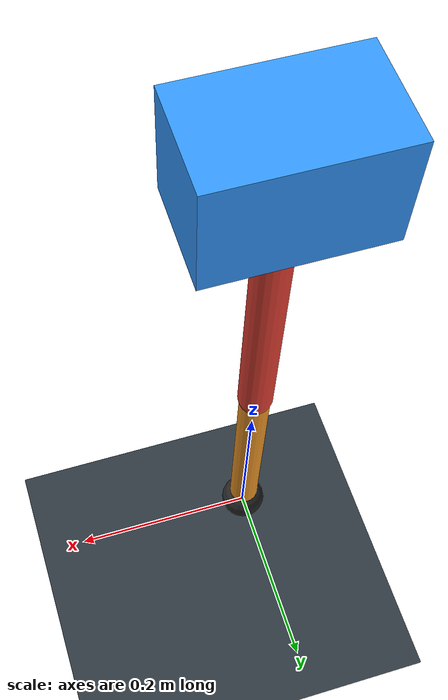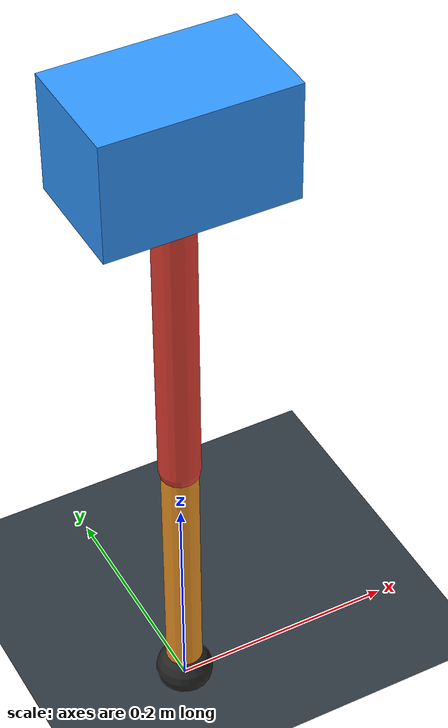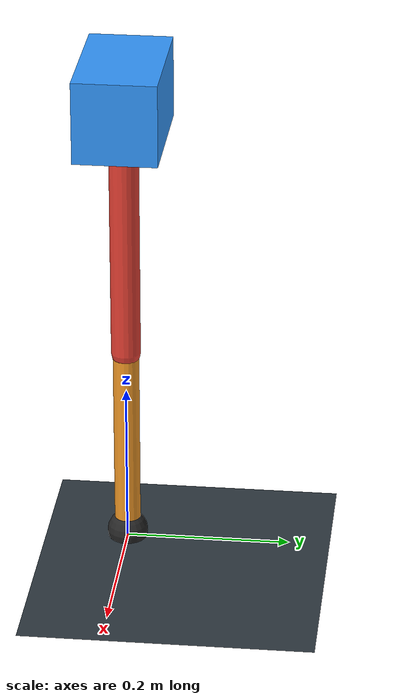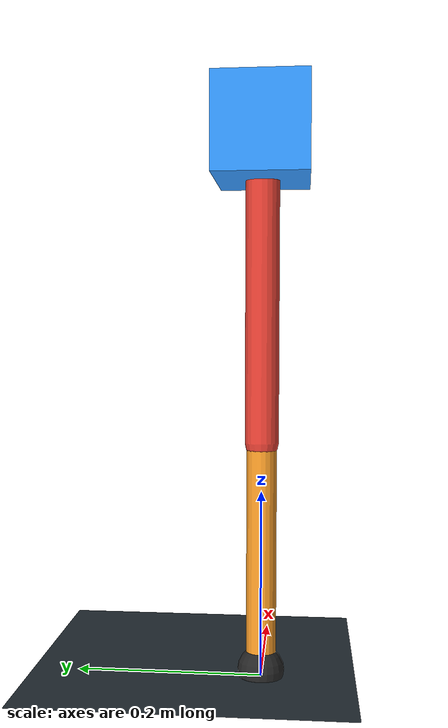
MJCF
<mujoco model="single_axis_two_bar">
  <compiler angle="radian" inertiafromgeom="true"/>
  <option timestep="0.001" integrator="implicitfast" gravity="0 0 -9.81"/>
  <default>
    <joint damping="0.08"/>
    <geom friction="1.2 0.01 0.0001" condim="3"/>
  </default>
  <worldbody>
    <geom name="floor" type="plane" size="5 5 0.1" rgba="0.18 0.22 0.25 1"/>
    <body name="carriage" pos="0 0 0.581065089852025">
      <joint name="pole_slide" type="slide" axis="0 0 1"/>
      <geom name="payload" type="box" size="0.08 0.05 0.05" mass="2.6151920830266895" rgba="0.2 0.6 1 1"/>
      <body name="thigh" pos="0 0 0">
        <joint name="hip" type="hinge" axis="0 1 0"/>
        <geom name="thigh_link" type="capsule" fromto="0 0 0 0 0 -0.3281769572721254" size="0.018" mass="0.23383041853227957" rgba="0.9 0.25 0.2 1"/>
        <body name="shank" pos="0 0 -0.3281769572721254">
          <joint name="knee" type="hinge" axis="0 1 0"/>
          <geom name="shank_link" type="capsule" fromto="0 0 0 0 0 -0.24508602195676632" size="0.016" mass="0.1746270291702463" rgba="0.95 0.6 0.15 1"/>
          <geom name="foot" type="sphere" pos="0 0 -0.24508602195676632" size="0.025" mass="0.03" rgba="0.15 0.15 0.15 1"/>
          <site name="toe" pos="0 0 -0.24508602195676632" size="0.008"/>
        </body>
      </body>
    </body>
  </worldbody>
  <actuator>
    <motor name="hip_motor" joint="hip" ctrlrange="-36.17329693585808 36.17329693585808"/>
    <motor name="knee_motor" joint="knee" ctrlrange="-100.42504341760304 100.42504341760304"/>
  </actuator>
</mujoco>
